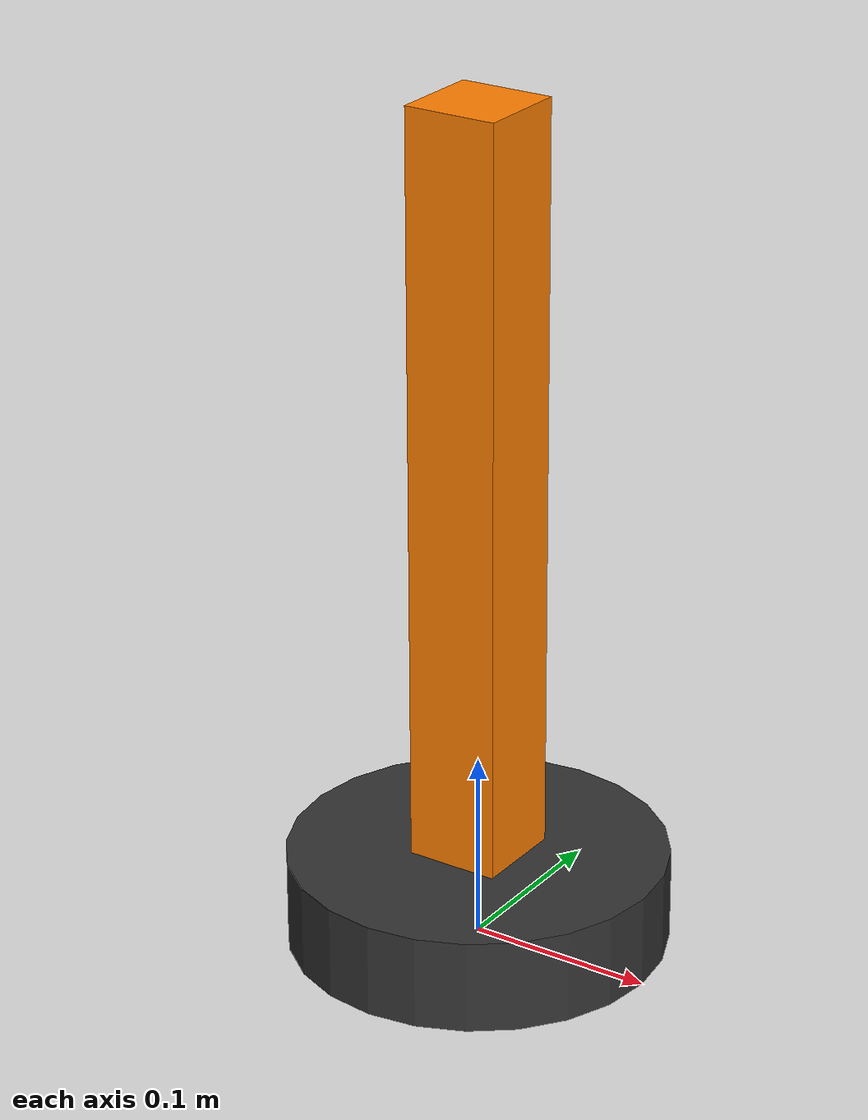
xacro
<?xml version="1.0"?>
<robot xmlns:xacro="http://www.ros.org/wiki/xacro" name="simple_arm">

  <xacro:property name="base_height" value="0.05"/>
  <xacro:property name="base_radius" value="0.10"/>
  <xacro:property name="arm_length" value="0.40"/>
  <xacro:property name="arm_width" value="0.05"/>

  <material name="dark">
    <color rgba="0.2 0.2 0.2 1.0"/>
  </material>
  <material name="orange">
    <color rgba="1.0 0.5 0.0 1.0"/>
  </material>

  <link name="world"/>

  <link name="base_link">
    <visual>
      <origin xyz="0 0 ${base_height / 2}" rpy="0 0 0"/>
      <geometry>
        <cylinder radius="${base_radius}" length="${base_height}"/>
      </geometry>
      <material name="dark"/>
    </visual>
  </link>

  <joint name="world_joint" type="fixed">
    <parent link="world"/>
    <child link="base_link"/>
    <origin xyz="0 0 0" rpy="0 0 0"/>
  </joint>

  <link name="upper_arm_link">
    <visual>
      <origin xyz="0 0 ${arm_length / 2}" rpy="0 0 0"/>
      <geometry>
        <box size="${arm_width} ${arm_width} ${arm_length}"/>
      </geometry>
      <material name="orange"/>
    </visual>
  </link>

  <joint name="shoulder_joint" type="revolute">
    <parent link="base_link"/>
    <child link="upper_arm_link"/>
    <origin xyz="0 0 ${base_height}" rpy="0 0 0"/>
    <axis xyz="0 1 0"/>
<limit lower="-1.57" upper="1.57" effort="10" velocity="2.0"/>
  </joint>

</robot>
